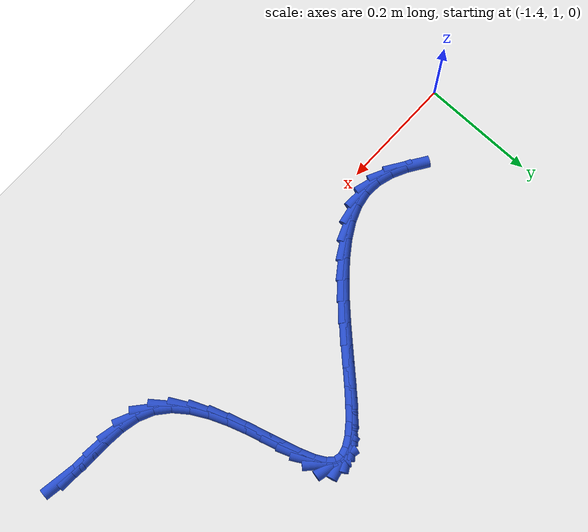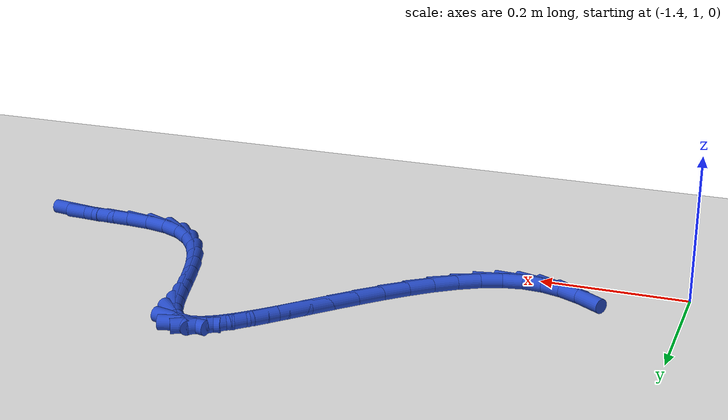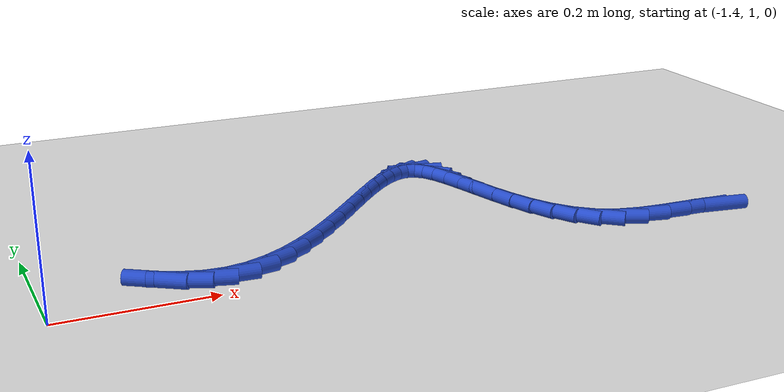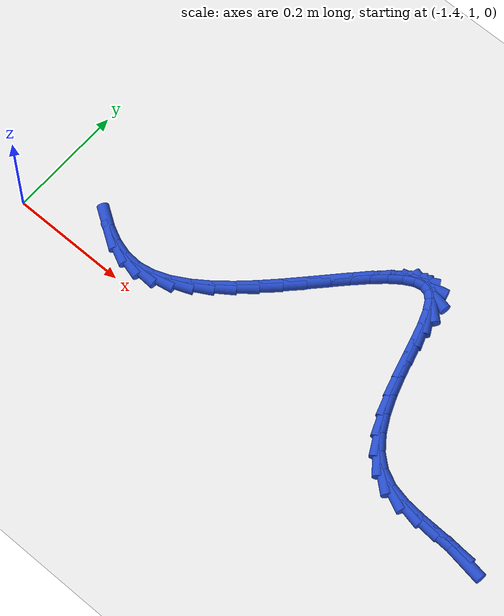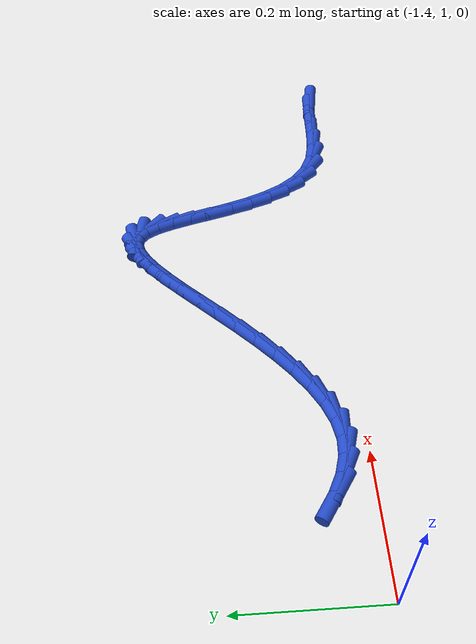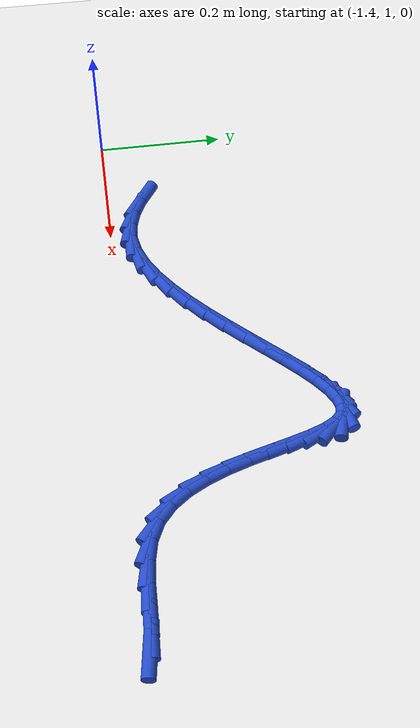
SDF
<sdf version="1.6">
 <world name="default">
  <model name="ground_plane">
   <static>1</static>
   <link name="link">
    <collision name="collision">
     <geometry><plane><normal>0 0 1</normal><size>100 100</size></plane></geometry>
     <surface><friction><ode><mu>100</mu><mu2>50</mu2></ode></friction></surface>
    </collision>
    <visual name="visual">
     <cast_shadows>0</cast_shadows>
     <geometry><plane><normal>0 0 1</normal><size>100 100</size></plane></geometry>
     <material>
      <script><uri>file://media/materials/scripts/gazebo.material</uri><name>Gazebo/WhiteGlow</name></script>
     </material>
    </visual>
   </link>
  </model>
  <model name="line">
   <link name="link_42">
    <pose>-0.4919668375662989 0.9951462919031011 0.01 0 1.57 -0.15102178992092483</pose>
    <collision name="collision">
     <geometry><cylinder><radius>0.01</radius><length>0.08</length></cylinder></geometry>
    </collision>
    <visual name="visual">
     <material>
      <script><name>Gazebo/Blue</name><uri>file://media/materials/scripts/gazebo.material</uri></script>
     </material>
     <geometry><cylinder><radius>0.01</radius><length>0.08</length></cylinder></geometry>
    </visual>
   </link>
   <link name="link_43">
    <pose>-0.518128183206521 0.9991275388077032 0.01 0 1.57 -0.04621916691536989</pose>
    <collision name="collision">
     <geometry><cylinder><radius>0.01</radius><length>0.08</length></cylinder></geometry>
    </collision>
    <visual name="visual">
     <material>
      <script><name>Gazebo/Blue</name><uri>file://media/materials/scripts/gazebo.material</uri></script>
     </material>
     <geometry><cylinder><radius>0.01</radius><length>0.08</length></cylinder></geometry>
    </visual>
   </link>
   <link name="link_44">
    <pose>-0.5487141749934646 1.0005422053531277 0.01 0 1.57 -0.03135889215472687</pose>
    <collision name="collision">
     <geometry><cylinder><radius>0.01</radius><length>0.08</length></cylinder></geometry>
    </collision>
    <visual name="visual">
     <material>
      <script><name>Gazebo/Blue</name><uri>file://media/materials/scripts/gazebo.material</uri></script>
     </material>
     <geometry><cylinder><radius>0.01</radius><length>0.08</length></cylinder></geometry>
    </visual>
   </link>
   <link name="link_45">
    <pose>-0.5816421816771867 1.0015751297715705 0.01 0 1.57 -0.08524765652726708</pose>
    <collision name="collision">
     <geometry><cylinder><radius>0.01</radius><length>0.08</length></cylinder></geometry>
    </collision>
    <visual name="visual">
     <material>
      <script><name>Gazebo/Blue</name><uri>file://media/materials/scripts/gazebo.material</uri></script>
     </material>
     <geometry><cylinder><radius>0.01</radius><length>0.08</length></cylinder></geometry>
    </visual>
   </link>
   <link name="link_46">
    <pose>-0.6148295720077435 1.0044111502952289 0.01 0 1.57 -0.21423308464687127</pose>
    <collision name="collision">
     <geometry><cylinder><radius>0.01</radius><length>0.08</length></cylinder></geometry>
    </collision>
    <visual name="visual">
     <material>
      <script><name>Gazebo/Blue</name><uri>file://media/materials/scripts/gazebo.material</uri></script>
     </material>
     <geometry><cylinder><radius>0.01</radius><length>0.08</length></cylinder></geometry>
    </visual>
   </link>
   <link name="link_47">
    <pose>-0.646193714735192 1.0112351051562987 0.01 0 1.57 -0.4393105872193635</pose>
    <collision name="collision">
     <geometry><cylinder><radius>0.01</radius><length>0.08</length></cylinder></geometry>
    </collision>
    <visual name="visual">
     <material>
      <script><name>Gazebo/Blue</name><uri>file://media/materials/scripts/gazebo.material</uri></script>
     </material>
     <geometry><cylinder><radius>0.01</radius><length>0.08</length></cylinder></geometry>
    </visual>
   </link>
   <link name="link_48">
    <pose>-0.6737044519141393 1.0241634621988427 0.01 0 1.57 -0.7045980109727769</pose>
    <collision name="collision">
     <geometry><cylinder><radius>0.01</radius><length>0.08</length></cylinder></geometry>
    </collision>
    <visual name="visual">
     <material>
      <script><name>Gazebo/Blue</name><uri>file://media/materials/scripts/gazebo.material</uri></script>
     </material>
     <geometry><cylinder><radius>0.01</radius><length>0.08</length></cylinder></geometry>
    </visual>
   </link>
   <link name="link_49">
    <pose>-0.6966145257263477 1.0436411273101704 0.01 0 1.57 -0.9187825900491353</pose>
    <collision name="collision">
     <geometry><cylinder><radius>0.01</radius><length>0.08</length></cylinder></geometry>
    </collision>
    <visual name="visual">
     <material>
      <script><name>Gazebo/Blue</name><uri>file://media/materials/scripts/gazebo.material</uri></script>
     </material>
     <geometry><cylinder><radius>0.01</radius><length>0.08</length></cylinder></geometry>
    </visual>
   </link>
   <link name="link_50">
    <pose>-0.7155032858335693 1.0683844956789388 0.01 0 1.57 -1.0746005450745542</pose>
    <collision name="collision">
     <geometry><cylinder><radius>0.01</radius><length>0.08</length></cylinder></geometry>
    </collision>
    <visual name="visual">
     <material>
      <script><name>Gazebo/Blue</name><uri>file://media/materials/scripts/gazebo.material</uri></script>
     </material>
     <geometry><cylinder><radius>0.01</radius><length>0.08</length></cylinder></geometry>
    </visual>
   </link>
   <link name="link_51">
    <pose>-0.7310112997483827 1.097030198349777 0.01 0 1.57 -1.182190004740575</pose>
    <collision name="collision">
     <geometry><cylinder><radius>0.01</radius><length>0.08</length></cylinder></geometry>
    </collision>
    <visual name="visual">
     <material>
      <script><name>Gazebo/Blue</name><uri>file://media/materials/scripts/gazebo.material</uri></script>
     </material>
     <geometry><cylinder><radius>0.01</radius><length>0.08</length></cylinder></geometry>
    </visual>
   </link>
   <link name="link_52">
    <pose>-0.7437791349833669 1.1282148663673142 0.01 0 1.57 -1.2523459501971252</pose>
    <collision name="collision">
     <geometry><cylinder><radius>0.01</radius><length>0.08</length></cylinder></geometry>
    </collision>
    <visual name="visual">
     <material>
      <script><name>Gazebo/Blue</name><uri>file://media/materials/scripts/gazebo.material</uri></script>
     </material>
     <geometry><cylinder><radius>0.01</radius><length>0.08</length></cylinder></geometry>
    </visual>
   </link>
   <link name="link_53">
    <pose>-0.7544473590511 1.1605751307761782 0.01 0 1.57 -1.2920070677949385</pose>
    <collision name="collision">
     <geometry><cylinder><radius>0.01</radius><length>0.08</length></cylinder></geometry>
    </collision>
    <visual name="visual">
     <material>
      <script><name>Gazebo/Blue</name><uri>file://media/materials/scripts/gazebo.material</uri></script>
     </material>
     <geometry><cylinder><radius>0.01</radius><length>0.08</length></cylinder></geometry>
    </visual>
   </link>
   <link name="link_54">
    <pose>-0.7636565394641612 1.1927476226209992 0.01 0 1.57 -1.3033462460114438</pose>
    <collision name="collision">
     <geometry><cylinder><radius>0.01</radius><length>0.08</length></cylinder></geometry>
    </collision>
    <visual name="visual">
     <material>
      <script><name>Gazebo/Blue</name><uri>file://media/materials/scripts/gazebo.material</uri></script>
     </material>
     <geometry><cylinder><radius>0.01</radius><length>0.08</length></cylinder></geometry>
    </visual>
   </link>
   <link name="link_55">
    <pose>-0.7720472437351287 1.2233689729464048 0.01 0 1.57 -1.2826293474768657</pose>
    <collision name="collision">
     <geometry><cylinder><radius>0.01</radius><length>0.08</length></cylinder></geometry>
    </collision>
    <visual name="visual">
     <material>
      <script><name>Gazebo/Blue</name><uri>file://media/materials/scripts/gazebo.material</uri></script>
     </material>
     <geometry><cylinder><radius>0.01</radius><length>0.08</length></cylinder></geometry>
    </visual>
   </link>
   <link name="link_56">
    <pose>-0.7802600393765811 1.2510758127970247 0.01 0 1.57 -1.2161634252203724</pose>
    <collision name="collision">
     <geometry><cylinder><radius>0.01</radius><length>0.08</length></cylinder></geometry>
    </collision>
    <visual name="visual">
     <material>
      <script><name>Gazebo/Blue</name><uri>file://media/materials/scripts/gazebo.material</uri></script>
     </material>
     <geometry><cylinder><radius>0.01</radius><length>0.08</length></cylinder></geometry>
    </visual>
   </link>
   <link name="link_57">
    <pose>-0.7889354939010971 1.2745047732174875 0.01 0 1.57 -1.0681499863516444</pose>
    <collision name="collision">
     <geometry><cylinder><radius>0.01</radius><length>0.08</length></cylinder></geometry>
    </collision>
    <visual name="visual">
     <material>
      <script><name>Gazebo/Blue</name><uri>file://media/materials/scripts/gazebo.material</uri></script>
     </material>
     <geometry><cylinder><radius>0.01</radius><length>0.08</length></cylinder></geometry>
    </visual>
   </link>
   <link name="link_58">
    <pose>-0.7987141748212554 1.292292485252422 0.01 0 1.57 -0.7525650326597283</pose>
    <collision name="collision">
     <geometry><cylinder><radius>0.01</radius><length>0.08</length></cylinder></geometry>
    </collision>
    <visual name="visual">
     <material>
      <script><name>Gazebo/Blue</name><uri>file://media/materials/scripts/gazebo.material</uri></script>
     </material>
     <geometry><cylinder><radius>0.01</radius><length>0.08</length></cylinder></geometry>
    </visual>
   </link>
   <link name="link_59">
    <pose>-0.8102349196840257 1.3030805003656218 0.01 0 1.57 -0.22488775656847576</pose>
    <collision name="collision">
     <geometry><cylinder><radius>0.01</radius><length>0.08</length></cylinder></geometry>
    </collision>
    <visual name="visual">
     <material>
      <script><name>Gazebo/Blue</name><uri>file://media/materials/scripts/gazebo.material</uri></script>
     </material>
     <geometry><cylinder><radius>0.01</radius><length>0.08</length></cylinder></geometry>
    </visual>
   </link>
   <link name="link_60">
    <pose>-0.8238924280675783 1.3062047544260817 0.01 0 1.57 0.2374343966636377</pose>
    <collision name="collision">
     <geometry><cylinder><radius>0.01</radius><length>0.08</length></cylinder></geometry>
    </collision>
    <visual name="visual">
     <material>
      <script><name>Gazebo/Blue</name><uri>file://media/materials/scripts/gazebo.material</uri></script>
     </material>
     <geometry><cylinder><radius>0.01</radius><length>0.08</length></cylinder></geometry>
    </visual>
   </link>
   <link name="link_61">
    <pose>-0.8395872643099407 1.3024066173141675 0.01 0 1.57 0.5091245140428687</pose>
    <collision name="collision">
     <geometry><cylinder><radius>0.01</radius><length>0.08</length></cylinder></geometry>
    </collision>
    <visual name="visual">
     <material>
      <script><name>Gazebo/Blue</name><uri>file://media/materials/scripts/gazebo.material</uri></script>
     </material>
     <geometry><cylinder><radius>0.01</radius><length>0.08</length></cylinder></geometry>
    </visual>
   </link>
   <link name="link_62">
    <pose>-0.8571603277364145 1.292597159897663 0.01 0 1.57 0.6579569372778699</pose>
    <collision name="collision">
     <geometry><cylinder><radius>0.01</radius><length>0.08</length></cylinder></geometry>
    </collision>
    <visual name="visual">
     <material>
      <script><name>Gazebo/Blue</name><uri>file://media/materials/scripts/gazebo.material</uri></script>
     </material>
     <geometry><cylinder><radius>0.01</radius><length>0.08</length></cylinder></geometry>
    </visual>
   </link>
   <link name="link_63">
    <pose>-0.8764525176723037 1.277687453044352 0.01 0 1.57 0.7415393980212701</pose>
    <collision name="collision">
     <geometry><cylinder><radius>0.01</radius><length>0.08</length></cylinder></geometry>
    </collision>
    <visual name="visual">
     <material>
      <script><name>Gazebo/Blue</name><uri>file://media/materials/scripts/gazebo.material</uri></script>
     </material>
     <geometry><cylinder><radius>0.01</radius><length>0.08</length></cylinder></geometry>
    </visual>
   </link>
   <link name="link_64">
    <pose>-0.897304733442911 1.2585885676220179 0.01 0 1.57 0.7881732362857409</pose>
    <collision name="collision">
     <geometry><cylinder><radius>0.01</radius><length>0.08</length></cylinder></geometry>
    </collision>
    <visual name="visual">
     <material>
      <script><name>Gazebo/Blue</name><uri>file://media/materials/scripts/gazebo.material</uri></script>
     </material>
     <geometry><cylinder><radius>0.01</radius><length>0.08</length></cylinder></geometry>
    </visual>
   </link>
   <link name="link_65">
    <pose>-0.9195578743735394 1.2362115744984448 0.01 0 1.57 0.8112856325320796</pose>
    <collision name="collision">
     <geometry><cylinder><radius>0.01</radius><length>0.08</length></cylinder></geometry>
    </collision>
    <visual name="visual">
     <material>
      <script><name>Gazebo/Blue</name><uri>file://media/materials/scripts/gazebo.material</uri></script>
     </material>
     <geometry><cylinder><radius>0.01</radius><length>0.08</length></cylinder></geometry>
    </visual>
   </link>
   <link name="link_66">
    <pose>-0.9430528397894921 1.2114675445414167 0.01 0 1.57 0.8173365047847124</pose>
    <collision name="collision">
     <geometry><cylinder><radius>0.01</radius><length>0.08</length></cylinder></geometry>
    </collision>
    <visual name="visual">
     <material>
      <script><name>Gazebo/Blue</name><uri>file://media/materials/scripts/gazebo.material</uri></script>
     </material>
     <geometry><cylinder><radius>0.01</radius><length>0.08</length></cylinder></geometry>
    </visual>
   </link>
   <link name="link_67">
    <pose>-0.9676305290160714 1.1852675486187167 0.01 0 1.57 0.8091959478905993</pose>
    <collision name="collision">
     <geometry><cylinder><radius>0.01</radius><length>0.08</length></cylinder></geometry>
    </collision>
    <visual name="visual">
     <material>
      <script><name>Gazebo/Blue</name><uri>file://media/materials/scripts/gazebo.material</uri></script>
     </material>
     <geometry><cylinder><radius>0.01</radius><length>0.08</length></cylinder></geometry>
    </visual>
   </link>
   <link name="link_68">
    <pose>-0.993131841378581 1.1585226575981282 0.01 0 1.57 0.7875423597823953</pose>
    <collision name="collision">
     <geometry><cylinder><radius>0.01</radius><length>0.08</length></cylinder></geometry>
    </collision>
    <visual name="visual">
     <material>
      <script><name>Gazebo/Blue</name><uri>file://media/materials/scripts/gazebo.material</uri></script>
     </material>
     <geometry><cylinder><radius>0.01</radius><length>0.08</length></cylinder></geometry>
    </visual>
   </link>
   <link name="link_69">
    <pose>-1.019397676202324 1.1321439423474362 0.01 0 1.57 0.7513590705956851</pose>
    <collision name="collision">
     <geometry><cylinder><radius>0.01</radius><length>0.08</length></cylinder></geometry>
    </collision>
    <visual name="visual">
     <material>
      <script><name>Gazebo/Blue</name><uri>file://media/materials/scripts/gazebo.material</uri></script>
     </material>
     <geometry><cylinder><radius>0.01</radius><length>0.08</length></cylinder></geometry>
    </visual>
   </link>
   <link name="link_70">
    <pose>-1.0462689328126027 1.107042473734423 0.01 0 1.57 0.6979379425321132</pose>
    <collision name="collision">
     <geometry><cylinder><radius>0.01</radius><length>0.08</length></cylinder></geometry>
    </collision>
    <visual name="visual">
     <material>
      <script><name>Gazebo/Blue</name><uri>file://media/materials/scripts/gazebo.material</uri></script>
     </material>
     <geometry><cylinder><radius>0.01</radius><length>0.08</length></cylinder></geometry>
    </visual>
   </link>
   <link name="link_71">
    <pose>-1.0735865105347207 1.0841293226268733 0.01 0 1.57 0.6225496626363619</pose>
    <collision name="collision">
     <geometry><cylinder><radius>0.01</radius><length>0.08</length></cylinder></geometry>
    </collision>
    <visual name="visual">
     <material>
      <script><name>Gazebo/Blue</name><uri>file://media/materials/scripts/gazebo.material</uri></script>
     </material>
     <geometry><cylinder><radius>0.01</radius><length>0.08</length></cylinder></geometry>
    </visual>
   </link>
   <link name="link_72">
    <pose>-1.1011913086939809 1.0643155598925704 0.01 0 1.57 0.5179471450908909</pose>
    <collision name="collision">
     <geometry><cylinder><radius>0.01</radius><length>0.08</length></cylinder></geometry>
    </collision>
    <visual name="visual">
     <material>
      <script><name>Gazebo/Blue</name><uri>file://media/materials/scripts/gazebo.material</uri></script>
     </material>
     <geometry><cylinder><radius>0.01</radius><length>0.08</length></cylinder></geometry>
    </visual>
   </link>
   <link name="link_73">
    <pose>-1.1289242266156863 1.0485122563992983 0.01 0 1.57 0.3742982642380993</pose>
    <collision name="collision">
     <geometry><cylinder><radius>0.01</radius><length>0.08</length></cylinder></geometry>
    </collision>
    <visual name="visual">
     <material>
      <script><name>Gazebo/Blue</name><uri>file://media/materials/scripts/gazebo.material</uri></script>
     </material>
     <geometry><cylinder><radius>0.01</radius><length>0.08</length></cylinder></geometry>
    </visual>
   </link>
   <link name="link_74">
    <pose>-1.1566261636251398 1.0376304830148402 0.01 0 1.57 0.18150728174431513</pose>
    <collision name="collision">
     <geometry><cylinder><radius>0.01</radius><length>0.08</length></cylinder></geometry>
    </collision>
    <visual name="visual">
     <material>
      <script><name>Gazebo/Blue</name><uri>file://media/materials/scripts/gazebo.material</uri></script>
     </material>
     <geometry><cylinder><radius>0.01</radius><length>0.08</length></cylinder></geometry>
    </visual>
   </link>
   <link name="link_75">
    <pose>-1.1841380190476443 1.03258131060698 0.01 0 1.57 -0.05739273439822393</pose>
    <collision name="collision">
     <geometry><cylinder><radius>0.01</radius><length>0.08</length></cylinder></geometry>
    </collision>
    <visual name="visual">
     <material>
      <script><name>Gazebo/Blue</name><uri>file://media/materials/scripts/gazebo.material</uri></script>
     </material>
     <geometry><cylinder><radius>0.01</radius><length>0.08</length></cylinder></geometry>
    </visual>
   </link>
   <link name="link_76">
    <pose>-1.2113085904071583 1.0341424184268404 0.01 0 1.57 -0.2827222607342226</pose>
    <collision name="collision">
     <geometry><cylinder><radius>0.01</radius><length>0.08</length></cylinder></geometry>
    </collision>
    <visual name="visual">
     <material>
      <script><name>Gazebo/Blue</name><uri>file://media/materials/scripts/gazebo.material</uri></script>
     </material>
     <geometry><cylinder><radius>0.01</radius><length>0.08</length></cylinder></geometry>
    </visual>
   </link>
   <link name="link_77">
    <pose>-1.2380564669006355 1.041912783530846 0.01 0 1.57 -0.45827652530691215</pose>
    <collision name="collision">
     <geometry><cylinder><radius>0.01</radius><length>0.08</length></cylinder></geometry>
    </collision>
    <visual name="visual">
     <material>
      <script><name>Gazebo/Blue</name><uri>file://media/materials/scripts/gazebo.material</uri></script>
     </material>
     <geometry><cylinder><radius>0.01</radius><length>0.08</length></cylinder></geometry>
    </visual>
   </link>
   <link name="link_78">
    <pose>-1.264336622173586 1.0548768909088249 0.01 0 1.57 -0.5868879685665445</pose>
    <collision name="collision">
     <geometry><cylinder><radius>0.01</radius><length>0.08</length></cylinder></geometry>
    </collision>
    <visual name="visual">
     <material>
      <script><name>Gazebo/Blue</name><uri>file://media/materials/scripts/gazebo.material</uri></script>
     </material>
     <geometry><cylinder><radius>0.01</radius><length>0.08</length></cylinder></geometry>
    </visual>
   </link>
  </model>
 </world>
</sdf>
